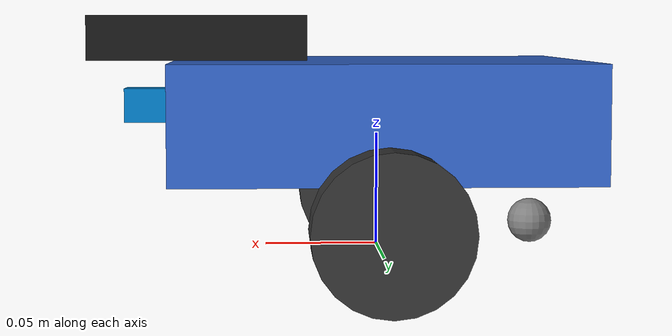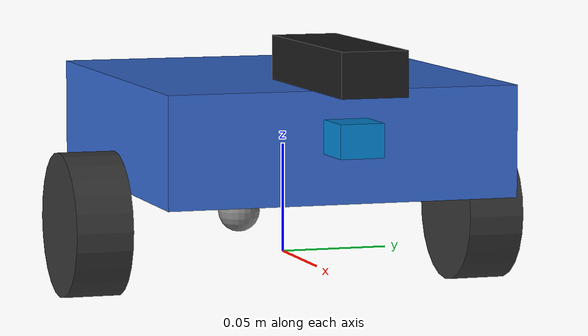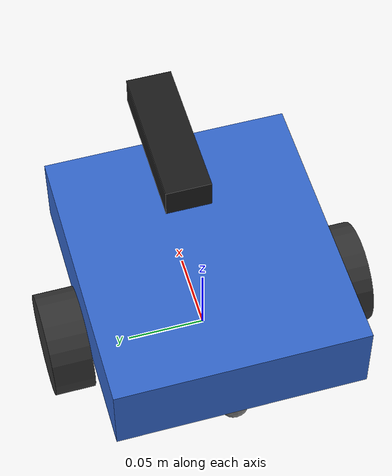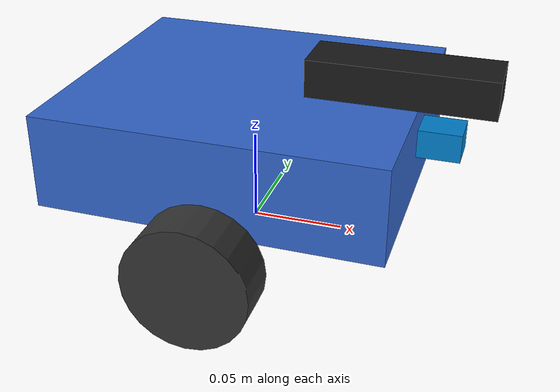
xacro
<?xml version="1.0"?>
<robot name="navigation_robot" xmlns:xacro="http://www.ros.org/wiki/xacro">

  <!-- INCLUDE MACROS -->
  <xacro:include filename="$(find robot_description)/urdf/wheel.xacro"/>
  <xacro:include filename="$(find robot_description)/urdf/camera.xacro"/>

  <!-- ROBOT PARAMETERS -->
  <xacro:property name="base_width" value="0.16"/>      <!-- 16cm wide -->
  <xacro:property name="base_length" value="0.18"/>     <!-- 18cm long -->
  <xacro:property name="base_height" value="0.05"/>     <!-- 5cm tall -->
  <xacro:property name="base_mass" value="1.0"/>        <!-- 1kg -->

  <xacro:property name="wheel_radius" value="0.033"/>   <!-- 33mm radius -->
  <xacro:property name="wheel_width" value="0.026"/>    <!-- 26mm wide -->
  <xacro:property name="wheel_offset_x" value="0.0"/>   <!-- Center of robot -->
  <xacro:property name="wheel_offset_y" value="0.093"/>  <!-- Half width + wheel width -->
  <xacro:property name="wheel_offset_z" value="-0.0165"/> <!-- Ground clearance -->

  <xacro:property name="caster_radius" value="0.01"/>   <!-- 1cm caster ball -->

  <!-- BASE FOOTPRINT (ground reference) -->
  <link name="base_footprint">
    <!-- This is a virtual link at ground level, no visual/collision -->
  </link>

  <!-- BASE LINK (main chassis) -->
  <link name="base_link">
    <!-- Visual -->
    <visual>
      <origin xyz="0 0 0.025" rpy="0 0 0"/>
      <geometry>
        <box size="${base_length} ${base_width} ${base_height}"/>
      </geometry>
      <material name="robot_blue">
        <color rgba="0.2 0.4 0.8 1.0"/>  <!-- Blue chassis -->
      </material>
    </visual>

    <!-- Collision -->
    <collision>
      <origin xyz="0 0 0.025" rpy="0 0 0"/>
      <geometry>
        <box size="${base_length} ${base_width} ${base_height}"/>
      </geometry>
    </collision>

    <!-- Inertial -->
    <inertial>
      <origin xyz="0 0 0.025" rpy="0 0 0"/>
      <mass value="${base_mass}"/>
      <inertia
        ixx="${(1/12) * base_mass * (base_width*base_width + base_height*base_height)}"
        ixy="0.0"
        ixz="0.0"
        iyy="${(1/12) * base_mass * (base_length*base_length + base_height*base_height)}"
        iyz="0.0"
        izz="${(1/12) * base_mass * (base_length*base_length + base_width*base_width)}"/>
    </inertial>
  </link>

  <!-- Joint connecting footprint to base_link -->
  <joint name="base_joint" type="fixed">
    <parent link="base_footprint"/>
    <child link="base_link"/>
    <origin xyz="0 0 ${wheel_radius}" rpy="0 0 0"/>
  </joint>

  <!-- WHEELS (using macro) -->
  <xacro:wheel
    prefix="left"
    parent="base_link"
    x_offset="${wheel_offset_x}"
    y_offset="${wheel_offset_y}"
    z_offset="${wheel_offset_z}"/>

  <xacro:wheel
    prefix="right"
    parent="base_link"
    x_offset="${wheel_offset_x}"
    y_offset="${-wheel_offset_y}"
    z_offset="${wheel_offset_z}"/>

  <!-- CASTER WHEEL (for stability) -->
  <link name="caster_link">
    <visual>
      <origin xyz="0 0 0" rpy="0 0 0"/>
      <geometry>
        <sphere radius="${caster_radius}"/>
      </geometry>
      <material name="caster_grey">
        <color rgba="0.5 0.5 0.5 1.0"/>
      </material>
    </visual>

    <collision>
      <origin xyz="0 0 0" rpy="0 0 0"/>
      <geometry>
        <sphere radius="${caster_radius}"/>
      </geometry>
    </collision>

    <inertial>
      <origin xyz="0 0 0" rpy="0 0 0"/>
      <mass value="0.05"/>
      <inertia
        ixx="0.00001" ixy="0.0" ixz="0.0"
        iyy="0.00001" iyz="0.0"
        izz="0.00001"/>
    </inertial>
  </link>

  <joint name="caster_joint" type="fixed">
    <parent link="base_link"/>
    <child link="caster_link"/>
    <origin xyz="-0.07 0 -0.023" rpy="0 0 0"/>  <!-- Back of robot, near ground -->
  </joint>

  <!-- CAMERA (using macro) -->
  <xacro:oak_d_camera
    parent="base_link"
    x="0.08"
    y="0.0"
    z="0.06"/>
  <!-- ULTRASONIC SENSOR -->
  <link name="ultrasonic_link">
    <visual>
      <origin xyz="0 0 0" rpy="0 0 0"/>
      <geometry>
        <box size="0.045 0.020 0.015"/>  <!-- HC-SR04 dimensions -->
      </geometry>
      <material name="ultrasonic_blue">
        <color rgba="0.0 0.5 0.8 1.0"/>
      </material>
    </visual>

    <collision>
      <origin xyz="0 0 0" rpy="0 0 0"/>
      <geometry>
        <box size="0.045 0.020 0.015"/>
      </geometry>
    </collision>

    <inertial>
      <origin xyz="0 0 0" rpy="0 0 0"/>
      <mass value="0.01"/>
      <inertia
        ixx="0.00000001" ixy="0.0" ixz="0.0"
        iyy="0.00000001" iyz="0.0"
        izz="0.00000001"/>
    </inertial>
  </link>

  <joint name="ultrasonic_joint" type="fixed">
    <parent link="base_link"/>
    <child link="ultrasonic_link"/>
    <origin xyz="0.09 0 0.03" rpy="0 0 0"/>  <!-- Front center, below camera -->
  </joint>

  <!-- GAZEBO MATERIALS (for simulation) -->
  <gazebo reference="base_link">
    <material>Gazebo/Blue</material>
  </gazebo>

  <gazebo reference="left_wheel_link">
    <material>Gazebo/DarkGrey</material>
    <mu1>1.0</mu1>  <!-- Friction coefficient -->
    <mu2>1.0</mu2>
  </gazebo>

  <gazebo reference="right_wheel_link">
    <material>Gazebo/DarkGrey</material>
    <mu1>1.0</mu1>
    <mu2>1.0</mu2>
  </gazebo>

  <gazebo reference="caster_link">
    <material>Gazebo/Grey</material>
    <mu1>0.1</mu1>  <!-- Low friction for caster -->
    <mu2>0.1</mu2>
  </gazebo>

  <gazebo reference="camera_link">
    <material>Gazebo/Black</material>
  </gazebo>

  <gazebo reference="ultrasonic_link">
    <material>Gazebo/Blue</material>
  </gazebo>

</robot>

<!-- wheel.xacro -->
<robot xmlns:xacro="http://www.ros.org/wiki/xacro">

  <xacro:macro name="wheel" params="prefix parent x_offset y_offset z_offset">

    <!-- Wheel Link -->
    <link name="${prefix}_wheel_link">
      <!-- Visual representation -->
      <visual>
        <origin xyz="0 0 0" rpy="${pi/2} 0 0"/>
        <geometry>
          <cylinder radius="0.033" length="0.026"/>
        </geometry>
        <material name="wheel_${prefix}">
          <color rgba="0.2 0.2 0.2 1.0"/>  <!-- Dark gray -->
        </material>
      </visual>

      <!-- Collision geometry (same as visual) -->
      <collision>
        <origin xyz="0 0 0" rpy="${pi/2} 0 0"/>
        <geometry>
          <cylinder radius="0.033" length="0.026"/>
        </geometry>
      </collision>

      <!-- Inertial properties (important for simulation) -->
      <inertial>
        <origin xyz="0 0 0" rpy="0 0 0"/>
        <mass value="0.1"/>  <!-- 100 grams -->
        <inertia
          ixx="0.00002708" ixy="0.0" ixz="0.0"
          iyy="0.00002708" iyz="0.0"
          izz="0.00005445"/>
      </inertial>
    </link>

    <!-- Wheel Joint (continuous rotation) -->
    <joint name="${prefix}_wheel_joint" type="continuous">
      <parent link="${parent}"/>
      <child link="${prefix}_wheel_link"/>
      <origin xyz="${x_offset} ${y_offset} ${z_offset}" rpy="0 0 0"/>
      <axis xyz="0 1 0"/>  <!-- Rotates around Y-axis -->
      <limit effort="1.0" velocity="10.0"/>
      <dynamics damping="0.1" friction="0.1"/>
    </joint>

    <!-- Transmission for motor control (used by ros2_control) -->
    <transmission name="${prefix}_wheel_transmission">
      <type>transmission_interface/SimpleTransmission</type>
      <joint name="${prefix}_wheel_joint">
        <hardwareInterface>hardware_interface/VelocityJointInterface</hardwareInterface>
      </joint>
      <actuator name="${prefix}_wheel_motor">
        <mechanicalReduction>1</mechanicalReduction>
      </actuator>
    </transmission>

  </xacro:macro>

</robot>

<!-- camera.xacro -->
<robot xmlns:xacro="http://www.ros.org/wiki/xacro">

  <xacro:macro name="oak_d_camera" params="parent x y z">

    <!-- Camera Physical Link -->
    <link name="camera_link">
      <!-- Visual representation of OAK-D -->
      <visual>
        <origin xyz="0 0 0" rpy="0 0 0"/>
        <geometry>
          <box size="0.097 0.030 0.020"/>  <!-- OAK-D dimensions: 97mm x 30mm x 20mm -->
        </geometry>
        <material name="camera_black">
          <color rgba="0.1 0.1 0.1 1.0"/>
        </material>
      </visual>

      <!-- Collision geometry -->
      <collision>
        <origin xyz="0 0 0" rpy="0 0 0"/>
        <geometry>
          <box size="0.097 0.030 0.020"/>
        </geometry>
      </collision>

      <!-- Inertial properties -->
      <inertial>
        <origin xyz="0 0 0" rpy="0 0 0"/>
        <mass value="0.064"/>  <!-- 64 grams -->
        <inertia
          ixx="0.00000533" ixy="0.0" ixz="0.0"
          iyy="0.00005133" iyz="0.0"
          izz="0.00005133"/>
      </inertial>
    </link>

    <!-- Joint connecting camera to parent -->
    <joint name="camera_joint" type="fixed">
      <parent link="${parent}"/>
      <child link="camera_link"/>
      <origin xyz="${x} ${y} ${z}" rpy="0 0 0"/>
    </joint>

    <!-- Camera Optical Frame (ROS convention: Z forward, X right, Y down) -->
    <link name="camera_optical_frame"/>

    <joint name="camera_optical_joint" type="fixed">
      <parent link="camera_link"/>
      <child link="camera_optical_frame"/>
      <!-- Rotate to align with optical frame convention -->
      <origin xyz="0 0 0" rpy="${-pi/2} 0 ${-pi/2}"/>
    </joint>

    <!-- Left Camera (stereo pair) -->
    <link name="camera_left_frame"/>

    <joint name="camera_left_joint" type="fixed">
      <parent link="camera_link"/>
      <child link="camera_left_frame"/>
      <origin xyz="0 0.0375 0" rpy="0 0 0"/>  <!-- 7.5cm baseline -->
    </joint>

    <!-- Right Camera (stereo pair) -->
    <link name="camera_right_frame"/>

    <joint name="camera_right_joint" type="fixed">
      <parent link="camera_link"/>
      <child link="camera_right_frame"/>
      <origin xyz="0 -0.0375 0" rpy="0 0 0"/>
    </joint>

    <!-- Depth Camera Frame -->
    <link name="camera_depth_frame"/>

    <joint name="camera_depth_joint" type="fixed">
      <parent link="camera_link"/>
      <child link="camera_depth_frame"/>
      <origin xyz="0 0 0" rpy="0 0 0"/>
    </joint>

    <!-- RGB Camera Frame (center) -->
    <link name="camera_rgb_frame"/>

    <joint name="camera_rgb_joint" type="fixed">
      <parent link="camera_link"/>
      <child link="camera_rgb_frame"/>
      <origin xyz="0 0 0" rpy="0 0 0"/>
    </joint>

  </xacro:macro>

</robot>
